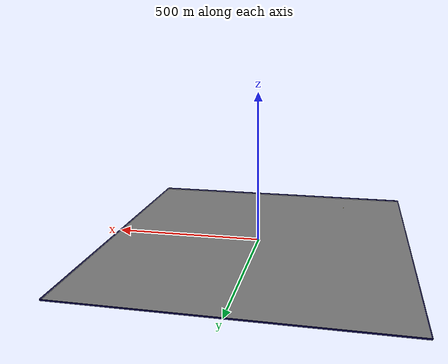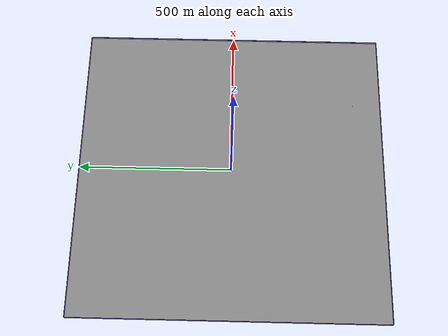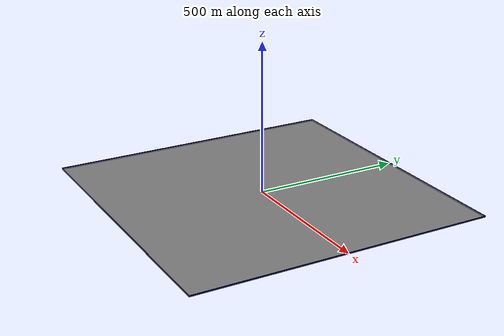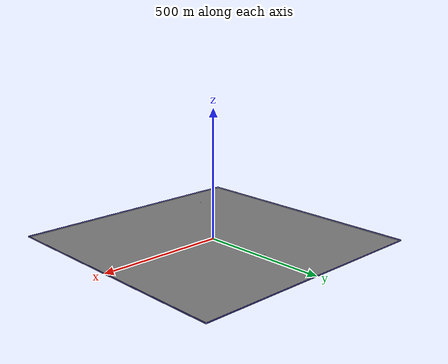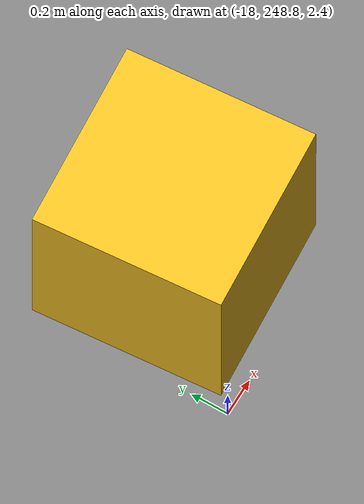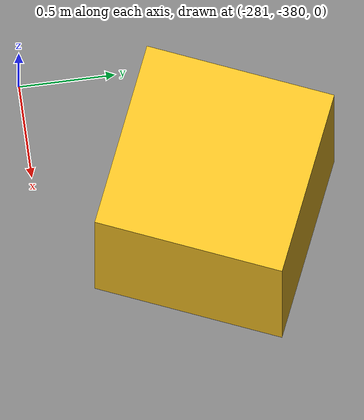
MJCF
<mujoco model="unnamed_model">
  <default>
    <default class="/" />
    <default class="border/" />
    <default class="border_1/" />
    <default class="border_2/" />
    <default class="border_3/" />
    <default class="agentplaceholder/" />
    <default class="placeholder_box/" />
    <default class="stone0/" />
    <default class="stone1/" />
    <default class="tree/" />
    <default class="tree_1/" />
  </default>
  <worldbody>
    <body name="border/">
      <body name="border/border" pos="0 501 2">
        <geom name="border/border_geom" class="border/" type="box" size="500 1 2" rgba="0.035000000000000003 0.016 0.28999999999999998 1" />
      </body>
    </body>
    <body name="border_1/">
      <body name="border_1/border" pos="0 -501 2">
        <geom name="border_1/border_geom" class="border_1/" type="box" size="500 1 2" rgba="0.035000000000000003 0.016 0.28999999999999998 1" />
      </body>
    </body>
    <body name="border_2/">
      <body name="border_2/border" pos="501 0 2">
        <geom name="border_2/border_geom" class="border_2/" type="box" size="1 500 2" rgba="0.035000000000000003 0.016 0.28999999999999998 1" />
      </body>
    </body>
    <body name="border_3/">
      <body name="border_3/border" pos="-501 0 2">
        <geom name="border_3/border_geom" class="border_3/" type="box" size="1 500 2" rgba="0.035000000000000003 0.016 0.28999999999999998 1" />
      </body>
    </body>
    <body euler="0 0 -85.983600028067499" name="agentplaceholder/">
      <joint name="agentplaceholder/boxagent_freeJoint/" class="/" type="free" />
      <body name="agentplaceholder/agentplaceholder" pos="-250 0 3" euler="0 0 0">
        <geom name="agentplaceholder/boxagent_geom" class="agentplaceholder/" type="box" size="0.5 0.5 0.5" rgba="0.94899999999999995 0.74509999999999998 0.1333 1" euler="0 0 0" />
      </body>
    </body>
    <body name="placeholder_box/">
      <body name="placeholder_box/placeholder_box" pos="-280.11799999999999 -379.10329999999999 0.5" euler="0 0 -23.281901448723715">
        <geom name="placeholder_box/box_geom" class="placeholder_box/" type="box" size="0.5 0.5 0.5" rgba="0.94899999999999995 0.74509999999999998 0.1333 1" euler="0 0 0" />
      </body>
    </body>
    <body name="stone0/">
      <body name="stone0/stone0" pos="247.86369999999999 -408.17500000000001 0.10000000000000001" euler="0 0 23.535918400029004">
        <geom name="stone0/stone_geom" class="stone0/" type="box" size="0.10000000000000001 0.10000000000000001 2" rgba="1 0 0 1" />
      </body>
    </body>
    <body name="stone1/">
      <body name="stone1/stone1" pos="226.06014999999999 417.90200000000004 0.10000000000000001" euler="0 0 153.41003359115854">
        <geom name="stone1/stone_geom" class="stone1/" type="box" size="0.10000000000000001 0.10000000000000001 2" rgba="1 0 0 1" />
      </body>
    </body>
    <body name="tree/">
      <body name="tree/tree" pos="142.34174999999999 -455.15539999999999 0.10000000000000001" euler="0 0 -73.199713753095509">
        <geom name="tree/tree_geom" class="tree/" type="box" size="0.10000000000000001 0.10000000000000001 2" rgba="1 0 0 1" />
      </body>
    </body>
    <body name="tree_1/">
      <body name="tree_1/tree" pos="361.80500000000001 19.301500000000033 0.10000000000000001" euler="0 0 15.721147799946522">
        <geom name="tree_1/tree_geom" class="tree_1/" type="box" size="0.10000000000000001 0.10000000000000001 2" rgba="1 0 0 1" />
      </body>
    </body>
    <geom name="base_plane" class="/" type="plane" size="500 500 0.10000000000000001" />
  </worldbody>
</mujoco>
